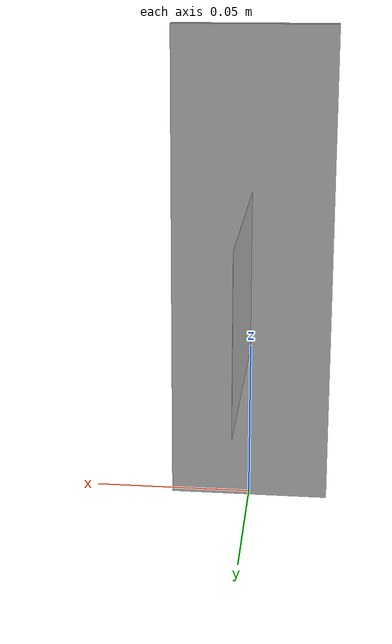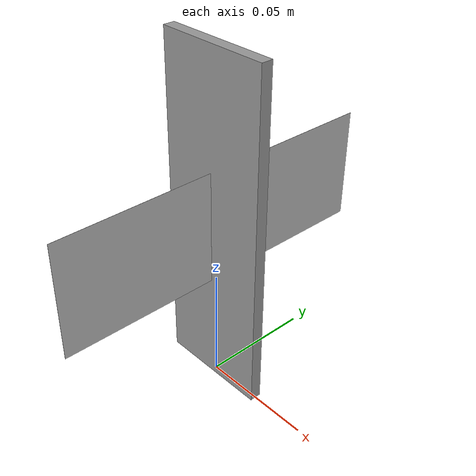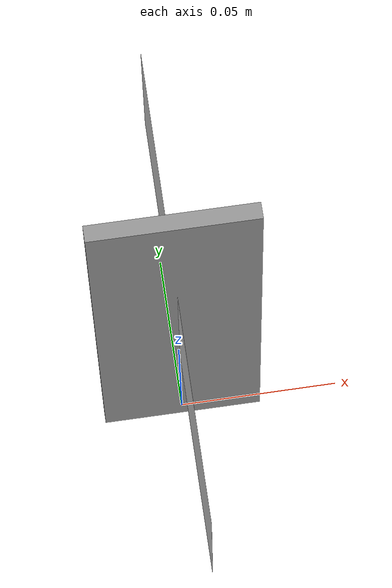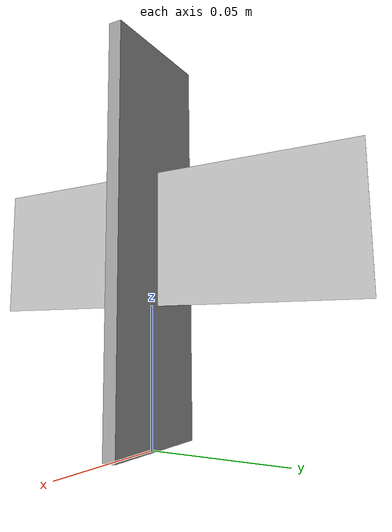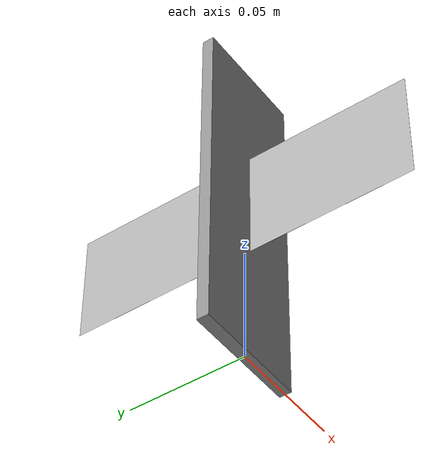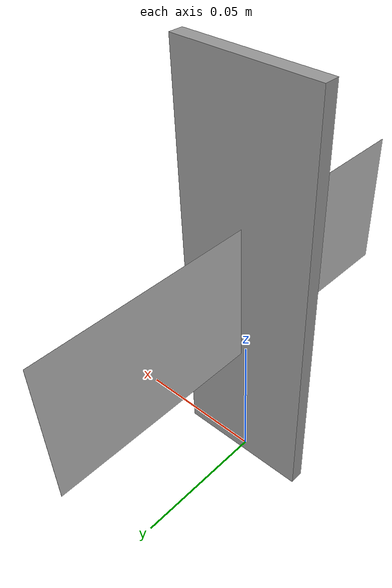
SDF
<?xml version="1.0"?>
<sdf version="1.6">
  <model name="cm1">
    <static>true</static>
    <pose>0 0 0.075 0 0 0</pose>
    <link name="cm1">

      <collision name="collision">
        <geometry>
          <box>
            <size>0.05 0.005 0.15</size>
          </box>
        </geometry>
      </collision>

      <!-- ① 主体：灰色 box（只改外观，碰撞体不变） -->
      <visual name="body">
        <geometry>
          <box>
            <size>0.05 0.005 0.15</size>
          </box>
        </geometry>
        <material>
          <script>
            <uri>file://media/materials/scripts/gazebo.material</uri>
            <name>Gazebo/Grey</name>
          </script>
        </material>
      </visual>

      <!-- ② 只在 +Y 这一面贴图（plane 是单面的） -->
      <visual name="face_texture">
        <!-- Y 稍微外移 0.00001，避免与 box 表面"闪面"(z-fighting) -->
        <pose>0 0.00251 0 0 0 0</pose>
        <geometry>
          <plane>
            <normal>1 0 0</normal>
            <size>0.05 0.15</size>
          </plane>
        </geometry>
        <material>
          <script>
            <uri>model://cm1/materials/scripts/cm1.material</uri>
            <uri>model://cm1/materials/textures/cm1.png</uri>
            <name>cm1</name>
          </script>
        </material>
      </visual>

    </link>
  </model>
</sdf>
